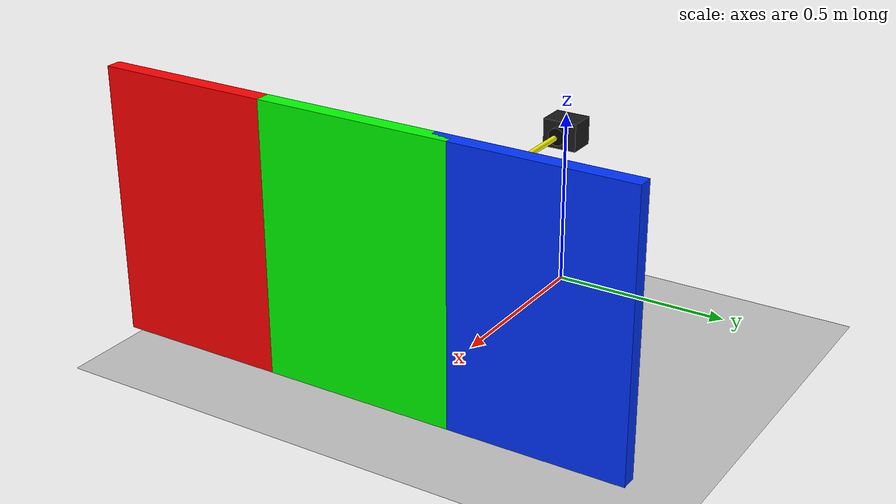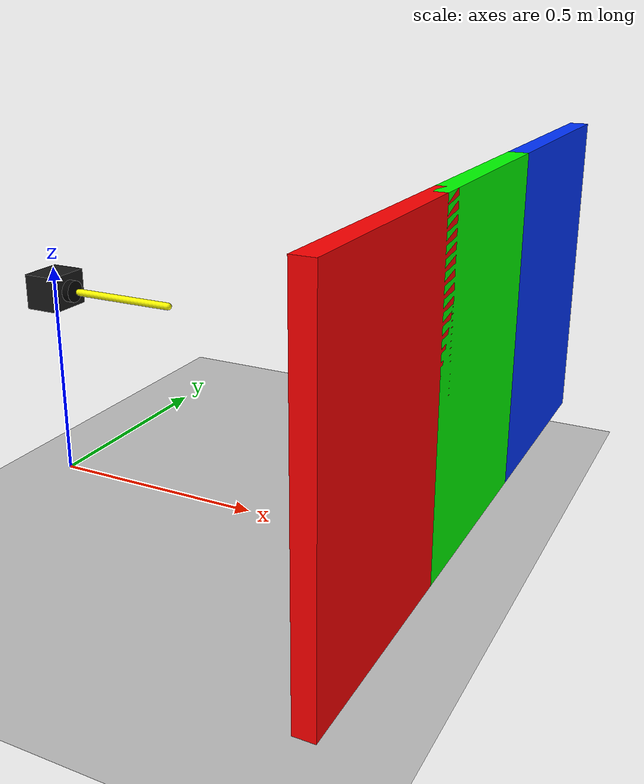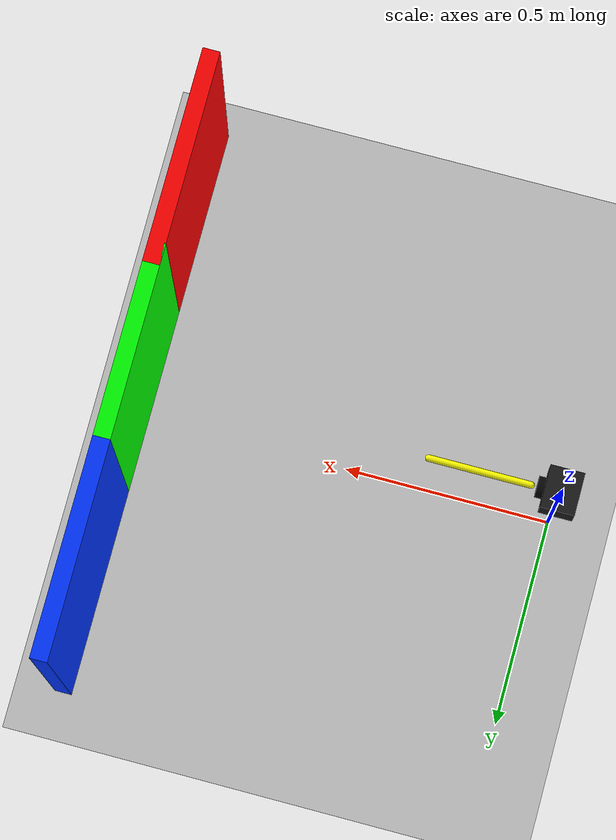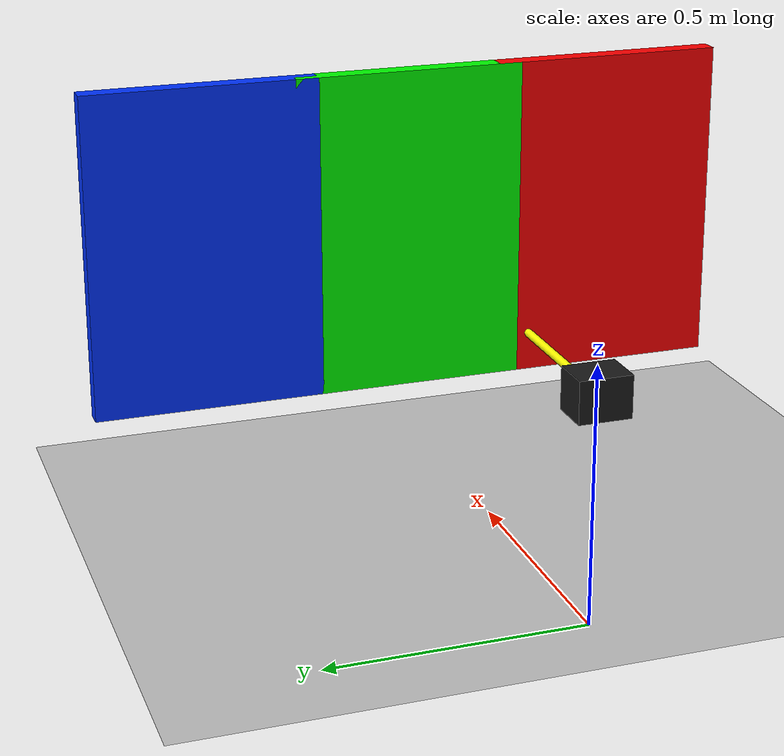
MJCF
<mujoco model="color_camera_sample">
  <compiler angle="radian"/>
  <option timestep="0.01" gravity="0 0 0"/>

  <visual>
    <global offwidth="512" offheight="512"/>
    <map znear="0.05" zfar="10"/>
  </visual>

  <asset>
    <texture name="ground_checker" type="2d" builtin="checker" width="128" height="128"
             rgb1="0.85 0.85 0.85" rgb2="0.65 0.65 0.65"/>
    <material name="ground_mat" texture="ground_checker" texrepeat="4 4" reflectance="0"/>
    <material name="red_mat" rgba="1 0 0 1"/>
    <material name="green_mat" rgba="0 1 0 1"/>
    <material name="blue_mat" rgba="0 0.2 1 1"/>
    <material name="sensor_mat" rgba="0.1 0.1 0.1 1"/>
    <material name="lens_mat" rgba="0.02 0.02 0.02 1"/>
    <material name="camera_forward_mat" rgba="1 1 0 1"/>
  </asset>

  <worldbody>
    <light name="front_light" pos="0 0 2.0" dir="1 0 -1" diffuse="1 1 1"/>
    <geom name="ground" type="plane" size="2 2 0.02" material="ground_mat"/>

    <body name="red_panel" pos="1.0 -0.45 0.45">
      <geom name="red_panel_geom" type="box" size="0.02 0.25 0.35" material="red_mat"/>
    </body>

    <body name="green_panel" pos="1.0 0 0.45">
      <geom name="green_panel_geom" type="box" size="0.02 0.25 0.35" material="green_mat"/>
    </body>

    <body name="blue_panel" pos="1.0 0.45 0.45">
      <geom name="blue_panel_geom" type="box" size="0.02 0.25 0.35" material="blue_mat"/>
    </body>

    <body name="color_sensor_body" pos="0 0 0.45">
      <freejoint name="color_sensor_freejoint"/>
      <geom name="color_sensor_case" type="box" size="0.04 0.05 0.04" material="sensor_mat"/>
      <geom name="color_sensor_lens" type="cylinder" size="0.025 0.012" pos="0.045 0 0"
            euler="0 1.57079632679 0" material="lens_mat"/>
      <geom name="color_sensor_forward_marker" type="capsule" size="0.008 0.12"
            fromto="0.07 0 0 0.31 0 0" material="camera_forward_mat"/>
      <camera name="color_camera" mode="fixed" pos="0 0 0" xyaxes="0 -1 0 0 0 1"/>
    </body>
  </worldbody>
</mujoco>
